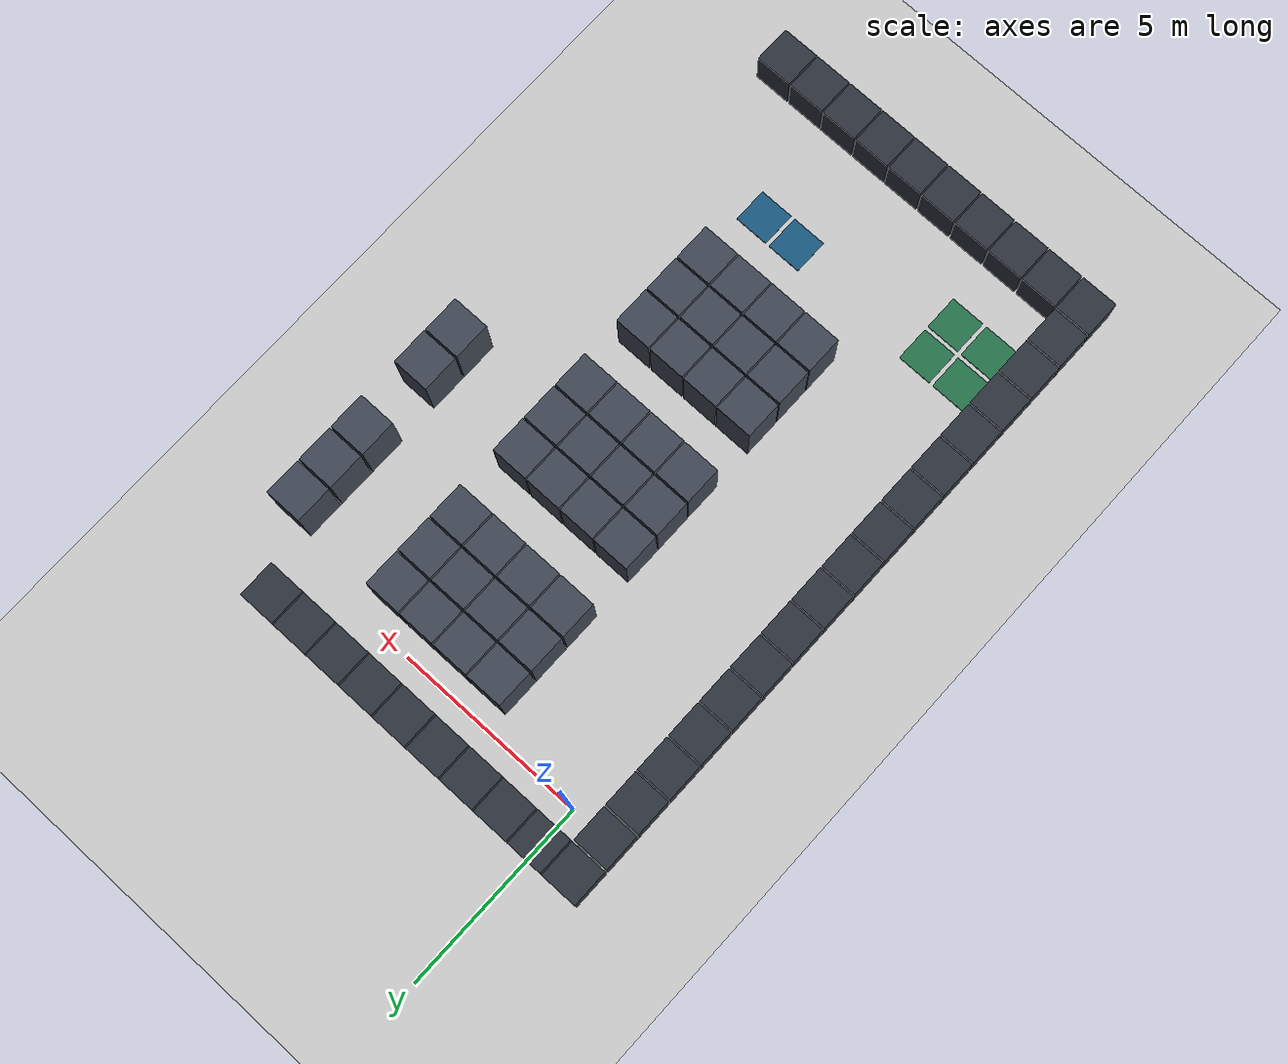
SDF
<sdf version="1.6">
 <world name="fleetx_warehouse">
  <include><uri>model://sun</uri></include>
  <include><uri>model://ground_plane</uri></include>
  <model name="shelf_3_1">
   <static>true</static>
   <pose>3.000 -1.000 0.800 0 0 0</pose>
   <link name="link">
    <collision name="collision"><geometry><box><size>0.960 0.960 1.600</size></box></geometry></collision>
    <visual name="visual">
     <geometry><box><size>0.960 0.960 1.600</size></box></geometry>
     <material><ambient>0.25 0.28 0.33 1</ambient><diffuse>0.25 0.28 0.33 1</diffuse></material>
    </visual>
   </link>
  </model>
  <model name="shelf_4_1">
   <static>true</static>
   <pose>4.000 -1.000 0.800 0 0 0</pose>
   <link name="link">
    <collision name="collision"><geometry><box><size>0.960 0.960 1.600</size></box></geometry></collision>
    <visual name="visual">
     <geometry><box><size>0.960 0.960 1.600</size></box></geometry>
     <material><ambient>0.25 0.28 0.33 1</ambient><diffuse>0.25 0.28 0.33 1</diffuse></material>
    </visual>
   </link>
  </model>
  <model name="shelf_5_1">
   <static>true</static>
   <pose>5.000 -1.000 0.800 0 0 0</pose>
   <link name="link">
    <collision name="collision"><geometry><box><size>0.960 0.960 1.600</size></box></geometry></collision>
    <visual name="visual">
     <geometry><box><size>0.960 0.960 1.600</size></box></geometry>
     <material><ambient>0.25 0.28 0.33 1</ambient><diffuse>0.25 0.28 0.33 1</diffuse></material>
    </visual>
   </link>
  </model>
  <model name="shelf_6_1">
   <static>true</static>
   <pose>6.000 -1.000 0.800 0 0 0</pose>
   <link name="link">
    <collision name="collision"><geometry><box><size>0.960 0.960 1.600</size></box></geometry></collision>
    <visual name="visual">
     <geometry><box><size>0.960 0.960 1.600</size></box></geometry>
     <material><ambient>0.25 0.28 0.33 1</ambient><diffuse>0.25 0.28 0.33 1</diffuse></material>
    </visual>
   </link>
  </model>
  <model name="shelf_9_1">
   <static>true</static>
   <pose>9.000 -1.000 0.800 0 0 0</pose>
   <link name="link">
    <collision name="collision"><geometry><box><size>0.960 0.960 1.600</size></box></geometry></collision>
    <visual name="visual">
     <geometry><box><size>0.960 0.960 1.600</size></box></geometry>
     <material><ambient>0.25 0.28 0.33 1</ambient><diffuse>0.25 0.28 0.33 1</diffuse></material>
    </visual>
   </link>
  </model>
  <model name="shelf_3_2">
   <static>true</static>
   <pose>3.000 -2.000 0.800 0 0 0</pose>
   <link name="link">
    <collision name="collision"><geometry><box><size>0.960 0.960 1.600</size></box></geometry></collision>
    <visual name="visual">
     <geometry><box><size>0.960 0.960 1.600</size></box></geometry>
     <material><ambient>0.25 0.28 0.33 1</ambient><diffuse>0.25 0.28 0.33 1</diffuse></material>
    </visual>
   </link>
  </model>
  <model name="shelf_4_2">
   <static>true</static>
   <pose>4.000 -2.000 0.800 0 0 0</pose>
   <link name="link">
    <collision name="collision"><geometry><box><size>0.960 0.960 1.600</size></box></geometry></collision>
    <visual name="visual">
     <geometry><box><size>0.960 0.960 1.600</size></box></geometry>
     <material><ambient>0.25 0.28 0.33 1</ambient><diffuse>0.25 0.28 0.33 1</diffuse></material>
    </visual>
   </link>
  </model>
  <model name="shelf_5_2">
   <static>true</static>
   <pose>5.000 -2.000 0.800 0 0 0</pose>
   <link name="link">
    <collision name="collision"><geometry><box><size>0.960 0.960 1.600</size></box></geometry></collision>
    <visual name="visual">
     <geometry><box><size>0.960 0.960 1.600</size></box></geometry>
     <material><ambient>0.25 0.28 0.33 1</ambient><diffuse>0.25 0.28 0.33 1</diffuse></material>
    </visual>
   </link>
  </model>
  <model name="shelf_6_2">
   <static>true</static>
   <pose>6.000 -2.000 0.800 0 0 0</pose>
   <link name="link">
    <collision name="collision"><geometry><box><size>0.960 0.960 1.600</size></box></geometry></collision>
    <visual name="visual">
     <geometry><box><size>0.960 0.960 1.600</size></box></geometry>
     <material><ambient>0.25 0.28 0.33 1</ambient><diffuse>0.25 0.28 0.33 1</diffuse></material>
    </visual>
   </link>
  </model>
  <model name="shelf_9_2">
   <static>true</static>
   <pose>9.000 -2.000 0.800 0 0 0</pose>
   <link name="link">
    <collision name="collision"><geometry><box><size>0.960 0.960 1.600</size></box></geometry></collision>
    <visual name="visual">
     <geometry><box><size>0.960 0.960 1.600</size></box></geometry>
     <material><ambient>0.25 0.28 0.33 1</ambient><diffuse>0.25 0.28 0.33 1</diffuse></material>
    </visual>
   </link>
  </model>
  <model name="shelf_3_3">
   <static>true</static>
   <pose>3.000 -3.000 0.800 0 0 0</pose>
   <link name="link">
    <collision name="collision"><geometry><box><size>0.960 0.960 1.600</size></box></geometry></collision>
    <visual name="visual">
     <geometry><box><size>0.960 0.960 1.600</size></box></geometry>
     <material><ambient>0.25 0.28 0.33 1</ambient><diffuse>0.25 0.28 0.33 1</diffuse></material>
    </visual>
   </link>
  </model>
  <model name="shelf_4_3">
   <static>true</static>
   <pose>4.000 -3.000 0.800 0 0 0</pose>
   <link name="link">
    <collision name="collision"><geometry><box><size>0.960 0.960 1.600</size></box></geometry></collision>
    <visual name="visual">
     <geometry><box><size>0.960 0.960 1.600</size></box></geometry>
     <material><ambient>0.25 0.28 0.33 1</ambient><diffuse>0.25 0.28 0.33 1</diffuse></material>
    </visual>
   </link>
  </model>
  <model name="shelf_5_3">
   <static>true</static>
   <pose>5.000 -3.000 0.800 0 0 0</pose>
   <link name="link">
    <collision name="collision"><geometry><box><size>0.960 0.960 1.600</size></box></geometry></collision>
    <visual name="visual">
     <geometry><box><size>0.960 0.960 1.600</size></box></geometry>
     <material><ambient>0.25 0.28 0.33 1</ambient><diffuse>0.25 0.28 0.33 1</diffuse></material>
    </visual>
   </link>
  </model>
  <model name="shelf_6_3">
   <static>true</static>
   <pose>6.000 -3.000 0.800 0 0 0</pose>
   <link name="link">
    <collision name="collision"><geometry><box><size>0.960 0.960 1.600</size></box></geometry></collision>
    <visual name="visual">
     <geometry><box><size>0.960 0.960 1.600</size></box></geometry>
     <material><ambient>0.25 0.28 0.33 1</ambient><diffuse>0.25 0.28 0.33 1</diffuse></material>
    </visual>
   </link>
  </model>
  <model name="shelf_9_3">
   <static>true</static>
   <pose>9.000 -3.000 0.800 0 0 0</pose>
   <link name="link">
    <collision name="collision"><geometry><box><size>0.960 0.960 1.600</size></box></geometry></collision>
    <visual name="visual">
     <geometry><box><size>0.960 0.960 1.600</size></box></geometry>
     <material><ambient>0.25 0.28 0.33 1</ambient><diffuse>0.25 0.28 0.33 1</diffuse></material>
    </visual>
   </link>
  </model>
  <model name="shelf_3_5">
   <static>true</static>
   <pose>3.000 -5.000 0.800 0 0 0</pose>
   <link name="link">
    <collision name="collision"><geometry><box><size>0.960 0.960 1.600</size></box></geometry></collision>
    <visual name="visual">
     <geometry><box><size>0.960 0.960 1.600</size></box></geometry>
     <material><ambient>0.25 0.28 0.33 1</ambient><diffuse>0.25 0.28 0.33 1</diffuse></material>
    </visual>
   </link>
  </model>
  <model name="shelf_4_5">
   <static>true</static>
   <pose>4.000 -5.000 0.800 0 0 0</pose>
   <link name="link">
    <collision name="collision"><geometry><box><size>0.960 0.960 1.600</size></box></geometry></collision>
    <visual name="visual">
     <geometry><box><size>0.960 0.960 1.600</size></box></geometry>
     <material><ambient>0.25 0.28 0.33 1</ambient><diffuse>0.25 0.28 0.33 1</diffuse></material>
    </visual>
   </link>
  </model>
  <model name="shelf_5_5">
   <static>true</static>
   <pose>5.000 -5.000 0.800 0 0 0</pose>
   <link name="link">
    <collision name="collision"><geometry><box><size>0.960 0.960 1.600</size></box></geometry></collision>
    <visual name="visual">
     <geometry><box><size>0.960 0.960 1.600</size></box></geometry>
     <material><ambient>0.25 0.28 0.33 1</ambient><diffuse>0.25 0.28 0.33 1</diffuse></material>
    </visual>
   </link>
  </model>
  <model name="shelf_6_5">
   <static>true</static>
   <pose>6.000 -5.000 0.800 0 0 0</pose>
   <link name="link">
    <collision name="collision"><geometry><box><size>0.960 0.960 1.600</size></box></geometry></collision>
    <visual name="visual">
     <geometry><box><size>0.960 0.960 1.600</size></box></geometry>
     <material><ambient>0.25 0.28 0.33 1</ambient><diffuse>0.25 0.28 0.33 1</diffuse></material>
    </visual>
   </link>
  </model>
  <model name="shelf_9_5">
   <static>true</static>
   <pose>9.000 -5.000 0.800 0 0 0</pose>
   <link name="link">
    <collision name="collision"><geometry><box><size>0.960 0.960 1.600</size></box></geometry></collision>
    <visual name="visual">
     <geometry><box><size>0.960 0.960 1.600</size></box></geometry>
     <material><ambient>0.25 0.28 0.33 1</ambient><diffuse>0.25 0.28 0.33 1</diffuse></material>
    </visual>
   </link>
  </model>
  <model name="shelf_3_6">
   <static>true</static>
   <pose>3.000 -6.000 0.800 0 0 0</pose>
   <link name="link">
    <collision name="collision"><geometry><box><size>0.960 0.960 1.600</size></box></geometry></collision>
    <visual name="visual">
     <geometry><box><size>0.960 0.960 1.600</size></box></geometry>
     <material><ambient>0.25 0.28 0.33 1</ambient><diffuse>0.25 0.28 0.33 1</diffuse></material>
    </visual>
   </link>
  </model>
  <model name="shelf_4_6">
   <static>true</static>
   <pose>4.000 -6.000 0.800 0 0 0</pose>
   <link name="link">
    <collision name="collision"><geometry><box><size>0.960 0.960 1.600</size></box></geometry></collision>
    <visual name="visual">
     <geometry><box><size>0.960 0.960 1.600</size></box></geometry>
     <material><ambient>0.25 0.28 0.33 1</ambient><diffuse>0.25 0.28 0.33 1</diffuse></material>
    </visual>
   </link>
  </model>
  <model name="shelf_5_6">
   <static>true</static>
   <pose>5.000 -6.000 0.800 0 0 0</pose>
   <link name="link">
    <collision name="collision"><geometry><box><size>0.960 0.960 1.600</size></box></geometry></collision>
    <visual name="visual">
     <geometry><box><size>0.960 0.960 1.600</size></box></geometry>
     <material><ambient>0.25 0.28 0.33 1</ambient><diffuse>0.25 0.28 0.33 1</diffuse></material>
    </visual>
   </link>
  </model>
  <model name="shelf_6_6">
   <static>true</static>
   <pose>6.000 -6.000 0.800 0 0 0</pose>
   <link name="link">
    <collision name="collision"><geometry><box><size>0.960 0.960 1.600</size></box></geometry></collision>
    <visual name="visual">
     <geometry><box><size>0.960 0.960 1.600</size></box></geometry>
     <material><ambient>0.25 0.28 0.33 1</ambient><diffuse>0.25 0.28 0.33 1</diffuse></material>
    </visual>
   </link>
  </model>
  <model name="shelf_9_6">
   <static>true</static>
   <pose>9.000 -6.000 0.800 0 0 0</pose>
   <link name="link">
    <collision name="collision"><geometry><box><size>0.960 0.960 1.600</size></box></geometry></collision>
    <visual name="visual">
     <geometry><box><size>0.960 0.960 1.600</size></box></geometry>
     <material><ambient>0.25 0.28 0.33 1</ambient><diffuse>0.25 0.28 0.33 1</diffuse></material>
    </visual>
   </link>
  </model>
  <model name="shelf_3_7">
   <static>true</static>
   <pose>3.000 -7.000 0.800 0 0 0</pose>
   <link name="link">
    <collision name="collision"><geometry><box><size>0.960 0.960 1.600</size></box></geometry></collision>
    <visual name="visual">
     <geometry><box><size>0.960 0.960 1.600</size></box></geometry>
     <material><ambient>0.25 0.28 0.33 1</ambient><diffuse>0.25 0.28 0.33 1</diffuse></material>
    </visual>
   </link>
  </model>
  <model name="shelf_4_7">
   <static>true</static>
   <pose>4.000 -7.000 0.800 0 0 0</pose>
   <link name="link">
    <collision name="collision"><geometry><box><size>0.960 0.960 1.600</size></box></geometry></collision>
    <visual name="visual">
     <geometry><box><size>0.960 0.960 1.600</size></box></geometry>
     <material><ambient>0.25 0.28 0.33 1</ambient><diffuse>0.25 0.28 0.33 1</diffuse></material>
    </visual>
   </link>
  </model>
  <model name="shelf_5_7">
   <static>true</static>
   <pose>5.000 -7.000 0.800 0 0 0</pose>
   <link name="link">
    <collision name="collision"><geometry><box><size>0.960 0.960 1.600</size></box></geometry></collision>
    <visual name="visual">
     <geometry><box><size>0.960 0.960 1.600</size></box></geometry>
     <material><ambient>0.25 0.28 0.33 1</ambient><diffuse>0.25 0.28 0.33 1</diffuse></material>
    </visual>
   </link>
  </model>
  <model name="shelf_6_7">
   <static>true</static>
   <pose>6.000 -7.000 0.800 0 0 0</pose>
   <link name="link">
    <collision name="collision"><geometry><box><size>0.960 0.960 1.600</size></box></geometry></collision>
    <visual name="visual">
     <geometry><box><size>0.960 0.960 1.600</size></box></geometry>
     <material><ambient>0.25 0.28 0.33 1</ambient><diffuse>0.25 0.28 0.33 1</diffuse></material>
    </visual>
   </link>
  </model>
  <model name="shelf_3_9">
   <static>true</static>
   <pose>3.000 -9.000 0.800 0 0 0</pose>
   <link name="link">
    <collision name="collision"><geometry><box><size>0.960 0.960 1.600</size></box></geometry></collision>
    <visual name="visual">
     <geometry><box><size>0.960 0.960 1.600</size></box></geometry>
     <material><ambient>0.25 0.28 0.33 1</ambient><diffuse>0.25 0.28 0.33 1</diffuse></material>
    </visual>
   </link>
  </model>
  <model name="shelf_4_9">
   <static>true</static>
   <pose>4.000 -9.000 0.800 0 0 0</pose>
   <link name="link">
    <collision name="collision"><geometry><box><size>0.960 0.960 1.600</size></box></geometry></collision>
    <visual name="visual">
     <geometry><box><size>0.960 0.960 1.600</size></box></geometry>
     <material><ambient>0.25 0.28 0.33 1</ambient><diffuse>0.25 0.28 0.33 1</diffuse></material>
    </visual>
   </link>
  </model>
  <model name="shelf_5_9">
   <static>true</static>
   <pose>5.000 -9.000 0.800 0 0 0</pose>
   <link name="link">
    <collision name="collision"><geometry><box><size>0.960 0.960 1.600</size></box></geometry></collision>
    <visual name="visual">
     <geometry><box><size>0.960 0.960 1.600</size></box></geometry>
     <material><ambient>0.25 0.28 0.33 1</ambient><diffuse>0.25 0.28 0.33 1</diffuse></material>
    </visual>
   </link>
  </model>
  <model name="shelf_6_9">
   <static>true</static>
   <pose>6.000 -9.000 0.800 0 0 0</pose>
   <link name="link">
    <collision name="collision"><geometry><box><size>0.960 0.960 1.600</size></box></geometry></collision>
    <visual name="visual">
     <geometry><box><size>0.960 0.960 1.600</size></box></geometry>
     <material><ambient>0.25 0.28 0.33 1</ambient><diffuse>0.25 0.28 0.33 1</diffuse></material>
    </visual>
   </link>
  </model>
  <model name="shelf_3_10">
   <static>true</static>
   <pose>3.000 -10.000 0.800 0 0 0</pose>
   <link name="link">
    <collision name="collision"><geometry><box><size>0.960 0.960 1.600</size></box></geometry></collision>
    <visual name="visual">
     <geometry><box><size>0.960 0.960 1.600</size></box></geometry>
     <material><ambient>0.25 0.28 0.33 1</ambient><diffuse>0.25 0.28 0.33 1</diffuse></material>
    </visual>
   </link>
  </model>
  <model name="shelf_4_10">
   <static>true</static>
   <pose>4.000 -10.000 0.800 0 0 0</pose>
   <link name="link">
    <collision name="collision"><geometry><box><size>0.960 0.960 1.600</size></box></geometry></collision>
    <visual name="visual">
     <geometry><box><size>0.960 0.960 1.600</size></box></geometry>
     <material><ambient>0.25 0.28 0.33 1</ambient><diffuse>0.25 0.28 0.33 1</diffuse></material>
    </visual>
   </link>
  </model>
  <model name="shelf_5_10">
   <static>true</static>
   <pose>5.000 -10.000 0.800 0 0 0</pose>
   <link name="link">
    <collision name="collision"><geometry><box><size>0.960 0.960 1.600</size></box></geometry></collision>
    <visual name="visual">
     <geometry><box><size>0.960 0.960 1.600</size></box></geometry>
     <material><ambient>0.25 0.28 0.33 1</ambient><diffuse>0.25 0.28 0.33 1</diffuse></material>
    </visual>
   </link>
  </model>
  <model name="shelf_6_10">
   <static>true</static>
   <pose>6.000 -10.000 0.800 0 0 0</pose>
   <link name="link">
    <collision name="collision"><geometry><box><size>0.960 0.960 1.600</size></box></geometry></collision>
    <visual name="visual">
     <geometry><box><size>0.960 0.960 1.600</size></box></geometry>
     <material><ambient>0.25 0.28 0.33 1</ambient><diffuse>0.25 0.28 0.33 1</diffuse></material>
    </visual>
   </link>
  </model>
  <model name="shelf_3_11">
   <static>true</static>
   <pose>3.000 -11.000 0.800 0 0 0</pose>
   <link name="link">
    <collision name="collision"><geometry><box><size>0.960 0.960 1.600</size></box></geometry></collision>
    <visual name="visual">
     <geometry><box><size>0.960 0.960 1.600</size></box></geometry>
     <material><ambient>0.25 0.28 0.33 1</ambient><diffuse>0.25 0.28 0.33 1</diffuse></material>
    </visual>
   </link>
  </model>
  <model name="shelf_4_11">
   <static>true</static>
   <pose>4.000 -11.000 0.800 0 0 0</pose>
   <link name="link">
    <collision name="collision"><geometry><box><size>0.960 0.960 1.600</size></box></geometry></collision>
    <visual name="visual">
     <geometry><box><size>0.960 0.960 1.600</size></box></geometry>
     <material><ambient>0.25 0.28 0.33 1</ambient><diffuse>0.25 0.28 0.33 1</diffuse></material>
    </visual>
   </link>
  </model>
  <model name="shelf_5_11">
   <static>true</static>
   <pose>5.000 -11.000 0.800 0 0 0</pose>
   <link name="link">
    <collision name="collision"><geometry><box><size>0.960 0.960 1.600</size></box></geometry></collision>
    <visual name="visual">
     <geometry><box><size>0.960 0.960 1.600</size></box></geometry>
     <material><ambient>0.25 0.28 0.33 1</ambient><diffuse>0.25 0.28 0.33 1</diffuse></material>
    </visual>
   </link>
  </model>
  <model name="shelf_6_11">
   <static>true</static>
   <pose>6.000 -11.000 0.800 0 0 0</pose>
   <link name="link">
    <collision name="collision"><geometry><box><size>0.960 0.960 1.600</size></box></geometry></collision>
    <visual name="visual">
     <geometry><box><size>0.960 0.960 1.600</size></box></geometry>
     <material><ambient>0.25 0.28 0.33 1</ambient><diffuse>0.25 0.28 0.33 1</diffuse></material>
    </visual>
   </link>
  </model>
  <model name="pick_0_13">
   <static>true</static>
   <pose>0.000 -13.000 0.005 0 0 0</pose>
   <link name="link">
    <visual name="visual">
     <geometry><box><size>0.900 0.900 0.01</size></box></geometry>
     <material><ambient>0.15 0.45 0.30 1</ambient><diffuse>0.15 0.45 0.30 1</diffuse></material>
    </visual>
   </link>
  </model>
  <model name="pick_1_13">
   <static>true</static>
   <pose>1.000 -13.000 0.005 0 0 0</pose>
   <link name="link">
    <visual name="visual">
     <geometry><box><size>0.900 0.900 0.01</size></box></geometry>
     <material><ambient>0.15 0.45 0.30 1</ambient><diffuse>0.15 0.45 0.30 1</diffuse></material>
    </visual>
   </link>
  </model>
  <model name="drop_5_13">
   <static>true</static>
   <pose>5.000 -13.000 0.005 0 0 0</pose>
   <link name="link">
    <visual name="visual">
     <geometry><box><size>0.900 0.900 0.01</size></box></geometry>
     <material><ambient>0.10 0.35 0.50 1</ambient><diffuse>0.10 0.35 0.50 1</diffuse></material>
    </visual>
   </link>
  </model>
  <model name="drop_6_13">
   <static>true</static>
   <pose>6.000 -13.000 0.005 0 0 0</pose>
   <link name="link">
    <visual name="visual">
     <geometry><box><size>0.900 0.900 0.01</size></box></geometry>
     <material><ambient>0.10 0.35 0.50 1</ambient><diffuse>0.10 0.35 0.50 1</diffuse></material>
    </visual>
   </link>
  </model>
  <model name="pick_0_14">
   <static>true</static>
   <pose>0.000 -14.000 0.005 0 0 0</pose>
   <link name="link">
    <visual name="visual">
     <geometry><box><size>0.900 0.900 0.01</size></box></geometry>
     <material><ambient>0.15 0.45 0.30 1</ambient><diffuse>0.15 0.45 0.30 1</diffuse></material>
    </visual>
   </link>
  </model>
  <model name="pick_1_14">
   <static>true</static>
   <pose>1.000 -14.000 0.005 0 0 0</pose>
   <link name="link">
    <visual name="visual">
     <geometry><box><size>0.900 0.900 0.01</size></box></geometry>
     <material><ambient>0.15 0.45 0.30 1</ambient><diffuse>0.15 0.45 0.30 1</diffuse></material>
    </visual>
   </link>
  </model>
  <model name="wall_n_-1">
   <static>true</static>
   <pose>-1.000 1.000 0.500 0 0 0</pose>
   <link name="link">
    <collision name="collision"><geometry><box><size>0.960 0.960 1.000</size></box></geometry></collision>
    <visual name="visual">
     <geometry><box><size>0.960 0.960 1.000</size></box></geometry>
     <material><ambient>0.18 0.20 0.24 1</ambient><diffuse>0.18 0.20 0.24 1</diffuse></material>
    </visual>
   </link>
  </model>
  <model name="wall_s_-1">
   <static>true</static>
   <pose>-1.000 -16.000 0.500 0 0 0</pose>
   <link name="link">
    <collision name="collision"><geometry><box><size>0.960 0.960 1.000</size></box></geometry></collision>
    <visual name="visual">
     <geometry><box><size>0.960 0.960 1.000</size></box></geometry>
     <material><ambient>0.18 0.20 0.24 1</ambient><diffuse>0.18 0.20 0.24 1</diffuse></material>
    </visual>
   </link>
  </model>
  <model name="wall_n_0">
   <static>true</static>
   <pose>0.000 1.000 0.500 0 0 0</pose>
   <link name="link">
    <collision name="collision"><geometry><box><size>0.960 0.960 1.000</size></box></geometry></collision>
    <visual name="visual">
     <geometry><box><size>0.960 0.960 1.000</size></box></geometry>
     <material><ambient>0.18 0.20 0.24 1</ambient><diffuse>0.18 0.20 0.24 1</diffuse></material>
    </visual>
   </link>
  </model>
  <model name="wall_s_0">
   <static>true</static>
   <pose>0.000 -16.000 0.500 0 0 0</pose>
   <link name="link">
    <collision name="collision"><geometry><box><size>0.960 0.960 1.000</size></box></geometry></collision>
    <visual name="visual">
     <geometry><box><size>0.960 0.960 1.000</size></box></geometry>
     <material><ambient>0.18 0.20 0.24 1</ambient><diffuse>0.18 0.20 0.24 1</diffuse></material>
    </visual>
   </link>
  </model>
  <model name="wall_n_1">
   <static>true</static>
   <pose>1.000 1.000 0.500 0 0 0</pose>
   <link name="link">
    <collision name="collision"><geometry><box><size>0.960 0.960 1.000</size></box></geometry></collision>
    <visual name="visual">
     <geometry><box><size>0.960 0.960 1.000</size></box></geometry>
     <material><ambient>0.18 0.20 0.24 1</ambient><diffuse>0.18 0.20 0.24 1</diffuse></material>
    </visual>
   </link>
  </model>
  <model name="wall_s_1">
   <static>true</static>
   <pose>1.000 -16.000 0.500 0 0 0</pose>
   <link name="link">
    <collision name="collision"><geometry><box><size>0.960 0.960 1.000</size></box></geometry></collision>
    <visual name="visual">
     <geometry><box><size>0.960 0.960 1.000</size></box></geometry>
     <material><ambient>0.18 0.20 0.24 1</ambient><diffuse>0.18 0.20 0.24 1</diffuse></material>
    </visual>
   </link>
  </model>
  <model name="wall_n_2">
   <static>true</static>
   <pose>2.000 1.000 0.500 0 0 0</pose>
   <link name="link">
    <collision name="collision"><geometry><box><size>0.960 0.960 1.000</size></box></geometry></collision>
    <visual name="visual">
     <geometry><box><size>0.960 0.960 1.000</size></box></geometry>
     <material><ambient>0.18 0.20 0.24 1</ambient><diffuse>0.18 0.20 0.24 1</diffuse></material>
    </visual>
   </link>
  </model>
  <model name="wall_s_2">
   <static>true</static>
   <pose>2.000 -16.000 0.500 0 0 0</pose>
   <link name="link">
    <collision name="collision"><geometry><box><size>0.960 0.960 1.000</size></box></geometry></collision>
    <visual name="visual">
     <geometry><box><size>0.960 0.960 1.000</size></box></geometry>
     <material><ambient>0.18 0.20 0.24 1</ambient><diffuse>0.18 0.20 0.24 1</diffuse></material>
    </visual>
   </link>
  </model>
  <model name="wall_n_3">
   <static>true</static>
   <pose>3.000 1.000 0.500 0 0 0</pose>
   <link name="link">
    <collision name="collision"><geometry><box><size>0.960 0.960 1.000</size></box></geometry></collision>
    <visual name="visual">
     <geometry><box><size>0.960 0.960 1.000</size></box></geometry>
     <material><ambient>0.18 0.20 0.24 1</ambient><diffuse>0.18 0.20 0.24 1</diffuse></material>
    </visual>
   </link>
  </model>
  <model name="wall_s_3">
   <static>true</static>
   <pose>3.000 -16.000 0.500 0 0 0</pose>
   <link name="link">
    <collision name="collision"><geometry><box><size>0.960 0.960 1.000</size></box></geometry></collision>
    <visual name="visual">
     <geometry><box><size>0.960 0.960 1.000</size></box></geometry>
     <material><ambient>0.18 0.20 0.24 1</ambient><diffuse>0.18 0.20 0.24 1</diffuse></material>
    </visual>
   </link>
  </model>
  <model name="wall_n_4">
   <static>true</static>
   <pose>4.000 1.000 0.500 0 0 0</pose>
   <link name="link">
    <collision name="collision"><geometry><box><size>0.960 0.960 1.000</size></box></geometry></collision>
    <visual name="visual">
     <geometry><box><size>0.960 0.960 1.000</size></box></geometry>
     <material><ambient>0.18 0.20 0.24 1</ambient><diffuse>0.18 0.20 0.24 1</diffuse></material>
    </visual>
   </link>
  </model>
  <model name="wall_s_4">
   <static>true</static>
   <pose>4.000 -16.000 0.500 0 0 0</pose>
   <link name="link">
    <collision name="collision"><geometry><box><size>0.960 0.960 1.000</size></box></geometry></collision>
    <visual name="visual">
     <geometry><box><size>0.960 0.960 1.000</size></box></geometry>
     <material><ambient>0.18 0.20 0.24 1</ambient><diffuse>0.18 0.20 0.24 1</diffuse></material>
    </visual>
   </link>
  </model>
  <model name="wall_n_5">
   <static>true</static>
   <pose>5.000 1.000 0.500 0 0 0</pose>
   <link name="link">
    <collision name="collision"><geometry><box><size>0.960 0.960 1.000</size></box></geometry></collision>
    <visual name="visual">
     <geometry><box><size>0.960 0.960 1.000</size></box></geometry>
     <material><ambient>0.18 0.20 0.24 1</ambient><diffuse>0.18 0.20 0.24 1</diffuse></material>
    </visual>
   </link>
  </model>
  <model name="wall_s_5">
   <static>true</static>
   <pose>5.000 -16.000 0.500 0 0 0</pose>
   <link name="link">
    <collision name="collision"><geometry><box><size>0.960 0.960 1.000</size></box></geometry></collision>
    <visual name="visual">
     <geometry><box><size>0.960 0.960 1.000</size></box></geometry>
     <material><ambient>0.18 0.20 0.24 1</ambient><diffuse>0.18 0.20 0.24 1</diffuse></material>
    </visual>
   </link>
  </model>
  <model name="wall_n_6">
   <static>true</static>
   <pose>6.000 1.000 0.500 0 0 0</pose>
   <link name="link">
    <collision name="collision"><geometry><box><size>0.960 0.960 1.000</size></box></geometry></collision>
    <visual name="visual">
     <geometry><box><size>0.960 0.960 1.000</size></box></geometry>
     <material><ambient>0.18 0.20 0.24 1</ambient><diffuse>0.18 0.20 0.24 1</diffuse></material>
    </visual>
   </link>
  </model>
  <model name="wall_s_6">
   <static>true</static>
   <pose>6.000 -16.000 0.500 0 0 0</pose>
   <link name="link">
    <collision name="collision"><geometry><box><size>0.960 0.960 1.000</size></box></geometry></collision>
    <visual name="visual">
     <geometry><box><size>0.960 0.960 1.000</size></box></geometry>
     <material><ambient>0.18 0.20 0.24 1</ambient><diffuse>0.18 0.20 0.24 1</diffuse></material>
    </visual>
   </link>
  </model>
  <model name="wall_n_7">
   <static>true</static>
   <pose>7.000 1.000 0.500 0 0 0</pose>
   <link name="link">
    <collision name="collision"><geometry><box><size>0.960 0.960 1.000</size></box></geometry></collision>
    <visual name="visual">
     <geometry><box><size>0.960 0.960 1.000</size></box></geometry>
     <material><ambient>0.18 0.20 0.24 1</ambient><diffuse>0.18 0.20 0.24 1</diffuse></material>
    </visual>
   </link>
  </model>
  <model name="wall_s_7">
   <static>true</static>
   <pose>7.000 -16.000 0.500 0 0 0</pose>
   <link name="link">
    <collision name="collision"><geometry><box><size>0.960 0.960 1.000</size></box></geometry></collision>
    <visual name="visual">
     <geometry><box><size>0.960 0.960 1.000</size></box></geometry>
     <material><ambient>0.18 0.20 0.24 1</ambient><diffuse>0.18 0.20 0.24 1</diffuse></material>
    </visual>
   </link>
  </model>
  <model name="wall_n_8">
   <static>true</static>
   <pose>8.000 1.000 0.500 0 0 0</pose>
   <link name="link">
    <collision name="collision"><geometry><box><size>0.960 0.960 1.000</size></box></geometry></collision>
    <visual name="visual">
     <geometry><box><size>0.960 0.960 1.000</size></box></geometry>
     <material><ambient>0.18 0.20 0.24 1</ambient><diffuse>0.18 0.20 0.24 1</diffuse></material>
    </visual>
   </link>
  </model>
  <model name="wall_s_8">
   <static>true</static>
   <pose>8.000 -16.000 0.500 0 0 0</pose>
   <link name="link">
    <collision name="collision"><geometry><box><size>0.960 0.960 1.000</size></box></geometry></collision>
    <visual name="visual">
     <geometry><box><size>0.960 0.960 1.000</size></box></geometry>
     <material><ambient>0.18 0.20 0.24 1</ambient><diffuse>0.18 0.20 0.24 1</diffuse></material>
    </visual>
   </link>
  </model>
  <model name="wall_w_0">
   <static>true</static>
   <pose>-1.000 0.000 0.500 0 0 0</pose>
   <link name="link">
    <collision name="collision"><geometry><box><size>0.960 0.960 1.000</size></box></geometry></collision>
    <visual name="visual">
     <geometry><box><size>0.960 0.960 1.000</size></box></geometry>
     <material><ambient>0.18 0.20 0.24 1</ambient><diffuse>0.18 0.20 0.24 1</diffuse></material>
    </visual>
   </link>
  </model>
  <model name="wall_w_1">
   <static>true</static>
   <pose>-1.000 -1.000 0.500 0 0 0</pose>
   <link name="link">
    <collision name="collision"><geometry><box><size>0.960 0.960 1.000</size></box></geometry></collision>
    <visual name="visual">
     <geometry><box><size>0.960 0.960 1.000</size></box></geometry>
     <material><ambient>0.18 0.20 0.24 1</ambient><diffuse>0.18 0.20 0.24 1</diffuse></material>
    </visual>
   </link>
  </model>
  <model name="wall_w_2">
   <static>true</static>
   <pose>-1.000 -2.000 0.500 0 0 0</pose>
   <link name="link">
    <collision name="collision"><geometry><box><size>0.960 0.960 1.000</size></box></geometry></collision>
    <visual name="visual">
     <geometry><box><size>0.960 0.960 1.000</size></box></geometry>
     <material><ambient>0.18 0.20 0.24 1</ambient><diffuse>0.18 0.20 0.24 1</diffuse></material>
    </visual>
   </link>
  </model>
  <model name="wall_w_3">
   <static>true</static>
   <pose>-1.000 -3.000 0.500 0 0 0</pose>
   <link name="link">
    <collision name="collision"><geometry><box><size>0.960 0.960 1.000</size></box></geometry></collision>
    <visual name="visual">
     <geometry><box><size>0.960 0.960 1.000</size></box></geometry>
     <material><ambient>0.18 0.20 0.24 1</ambient><diffuse>0.18 0.20 0.24 1</diffuse></material>
    </visual>
   </link>
  </model>
  <model name="wall_w_4">
   <static>true</static>
   <pose>-1.000 -4.000 0.500 0 0 0</pose>
   <link name="link">
    <collision name="collision"><geometry><box><size>0.960 0.960 1.000</size></box></geometry></collision>
    <visual name="visual">
     <geometry><box><size>0.960 0.960 1.000</size></box></geometry>
     <material><ambient>0.18 0.20 0.24 1</ambient><diffuse>0.18 0.20 0.24 1</diffuse></material>
    </visual>
   </link>
  </model>
  <model name="wall_w_5">
   <static>true</static>
   <pose>-1.000 -5.000 0.500 0 0 0</pose>
   <link name="link">
    <collision name="collision"><geometry><box><size>0.960 0.960 1.000</size></box></geometry></collision>
    <visual name="visual">
     <geometry><box><size>0.960 0.960 1.000</size></box></geometry>
     <material><ambient>0.18 0.20 0.24 1</ambient><diffuse>0.18 0.20 0.24 1</diffuse></material>
    </visual>
   </link>
  </model>
  <model name="wall_w_6">
   <static>true</static>
   <pose>-1.000 -6.000 0.500 0 0 0</pose>
   <link name="link">
    <collision name="collision"><geometry><box><size>0.960 0.960 1.000</size></box></geometry></collision>
    <visual name="visual">
     <geometry><box><size>0.960 0.960 1.000</size></box></geometry>
     <material><ambient>0.18 0.20 0.24 1</ambient><diffuse>0.18 0.20 0.24 1</diffuse></material>
    </visual>
   </link>
  </model>
  <model name="wall_w_7">
   <static>true</static>
   <pose>-1.000 -7.000 0.500 0 0 0</pose>
   <link name="link">
    <collision name="collision"><geometry><box><size>0.960 0.960 1.000</size></box></geometry></collision>
    <visual name="visual">
     <geometry><box><size>0.960 0.960 1.000</size></box></geometry>
     <material><ambient>0.18 0.20 0.24 1</ambient><diffuse>0.18 0.20 0.24 1</diffuse></material>
    </visual>
   </link>
  </model>
  <model name="wall_w_8">
   <static>true</static>
   <pose>-1.000 -8.000 0.500 0 0 0</pose>
   <link name="link">
    <collision name="collision"><geometry><box><size>0.960 0.960 1.000</size></box></geometry></collision>
    <visual name="visual">
     <geometry><box><size>0.960 0.960 1.000</size></box></geometry>
     <material><ambient>0.18 0.20 0.24 1</ambient><diffuse>0.18 0.20 0.24 1</diffuse></material>
    </visual>
   </link>
  </model>
  <model name="wall_w_9">
   <static>true</static>
   <pose>-1.000 -9.000 0.500 0 0 0</pose>
   <link name="link">
    <collision name="collision"><geometry><box><size>0.960 0.960 1.000</size></box></geometry></collision>
    <visual name="visual">
     <geometry><box><size>0.960 0.960 1.000</size></box></geometry>
     <material><ambient>0.18 0.20 0.24 1</ambient><diffuse>0.18 0.20 0.24 1</diffuse></material>
    </visual>
   </link>
  </model>
  <model name="wall_w_10">
   <static>true</static>
   <pose>-1.000 -10.000 0.500 0 0 0</pose>
   <link name="link">
    <collision name="collision"><geometry><box><size>0.960 0.960 1.000</size></box></geometry></collision>
    <visual name="visual">
     <geometry><box><size>0.960 0.960 1.000</size></box></geometry>
     <material><ambient>0.18 0.20 0.24 1</ambient><diffuse>0.18 0.20 0.24 1</diffuse></material>
    </visual>
   </link>
  </model>
  <model name="wall_w_11">
   <static>true</static>
   <pose>-1.000 -11.000 0.500 0 0 0</pose>
   <link name="link">
    <collision name="collision"><geometry><box><size>0.960 0.960 1.000</size></box></geometry></collision>
    <visual name="visual">
     <geometry><box><size>0.960 0.960 1.000</size></box></geometry>
     <material><ambient>0.18 0.20 0.24 1</ambient><diffuse>0.18 0.20 0.24 1</diffuse></material>
    </visual>
   </link>
  </model>
  <model name="wall_w_12">
   <static>true</static>
   <pose>-1.000 -12.000 0.500 0 0 0</pose>
   <link name="link">
    <collision name="collision"><geometry><box><size>0.960 0.960 1.000</size></box></geometry></collision>
    <visual name="visual">
     <geometry><box><size>0.960 0.960 1.000</size></box></geometry>
     <material><ambient>0.18 0.20 0.24 1</ambient><diffuse>0.18 0.20 0.24 1</diffuse></material>
    </visual>
   </link>
  </model>
  <model name="wall_w_13">
   <static>true</static>
   <pose>-1.000 -13.000 0.500 0 0 0</pose>
   <link name="link">
    <collision name="collision"><geometry><box><size>0.960 0.960 1.000</size></box></geometry></collision>
    <visual name="visual">
     <geometry><box><size>0.960 0.960 1.000</size></box></geometry>
     <material><ambient>0.18 0.20 0.24 1</ambient><diffuse>0.18 0.20 0.24 1</diffuse></material>
    </visual>
   </link>
  </model>
  <model name="wall_w_14">
   <static>true</static>
   <pose>-1.000 -14.000 0.500 0 0 0</pose>
   <link name="link">
    <collision name="collision"><geometry><box><size>0.960 0.960 1.000</size></box></geometry></collision>
    <visual name="visual">
     <geometry><box><size>0.960 0.960 1.000</size></box></geometry>
     <material><ambient>0.18 0.20 0.24 1</ambient><diffuse>0.18 0.20 0.24 1</diffuse></material>
    </visual>
   </link>
  </model>
  <model name="wall_w_15">
   <static>true</static>
   <pose>-1.000 -15.000 0.500 0 0 0</pose>
   <link name="link">
    <collision name="collision"><geometry><box><size>0.960 0.960 1.000</size></box></geometry></collision>
    <visual name="visual">
     <geometry><box><size>0.960 0.960 1.000</size></box></geometry>
     <material><ambient>0.18 0.20 0.24 1</ambient><diffuse>0.18 0.20 0.24 1</diffuse></material>
    </visual>
   </link>
  </model>
 </world>
</sdf>
